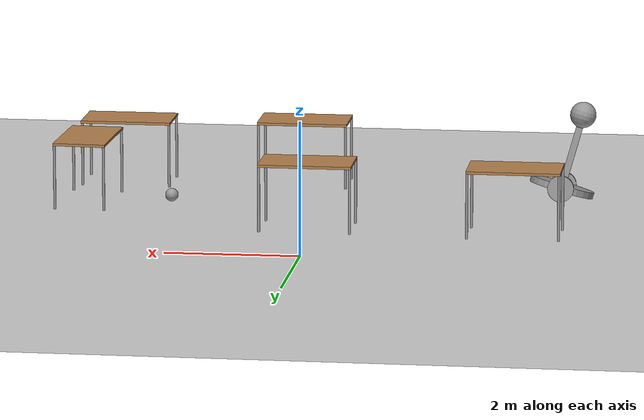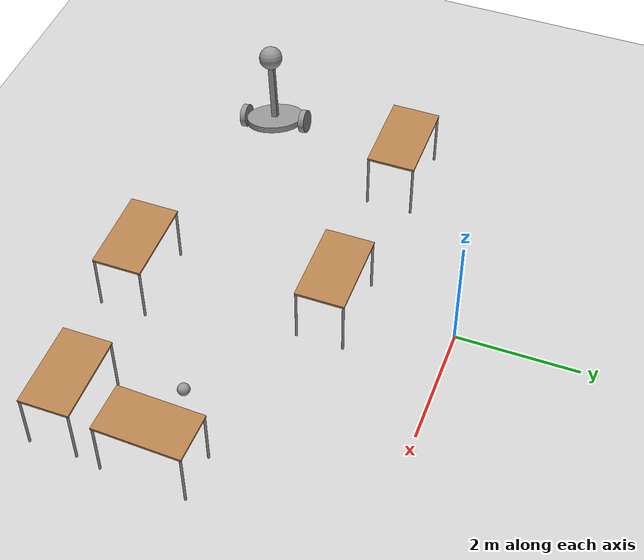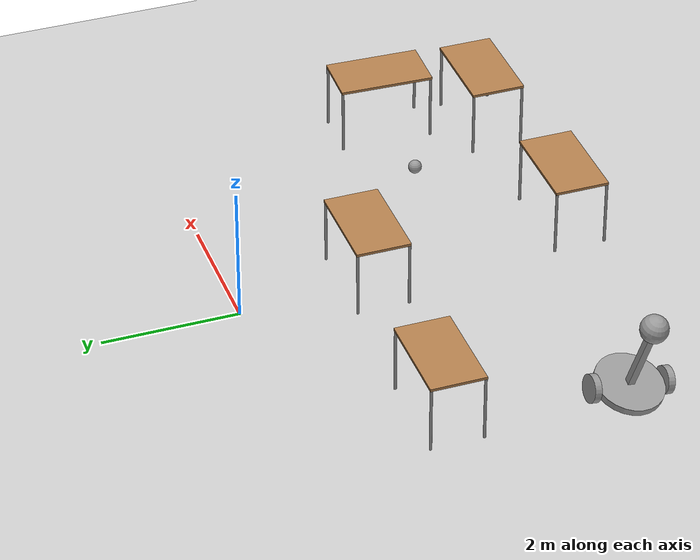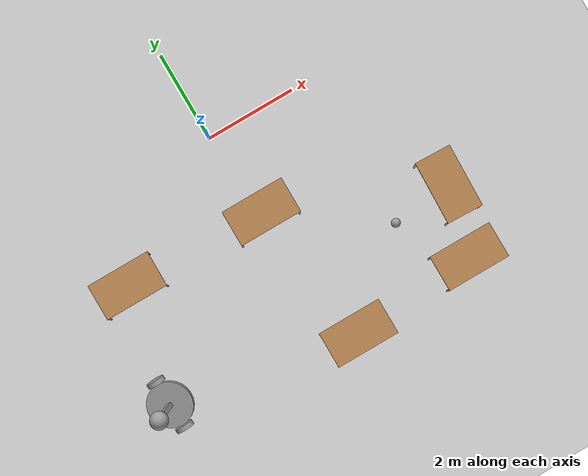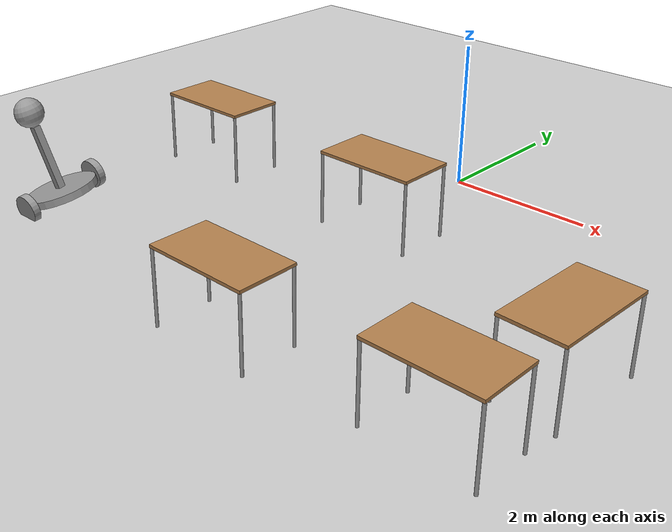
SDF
<sdf version="1.6">
 <world name="default">
  <model name="ground_plane">
   <static>1</static>
   <link name="link">
    <collision name="collision">
     <geometry><plane><normal>0 0 1</normal><size>100 100</size></plane></geometry>
     <surface><friction><ode><mu>100</mu><mu2>50</mu2></ode></friction></surface>
    </collision>
    <visual name="visual">
     <cast_shadows>0</cast_shadows>
     <geometry><plane><normal>0 0 1</normal><size>100 100</size></plane></geometry>
     <material>
      <script><uri>file://media/materials/scripts/gazebo.material</uri><name>Gazebo/Grey</name></script>
     </material>
    </visual>
   </link>
  </model>
  <model name="robot_1">
   <link name="link_10">
    <pose>0 0 0.83 0 -0 0</pose>
    <inertial>
     <mass>1</mass>
     <inertia><ixx>0.1</ixx><ixy>0</ixy><ixz>0</ixz><iyy>0.1</iyy><iyz>0</iyz><izz>0.1</izz></inertia>
    </inertial>
    <visual name="visual">
     <geometry><sphere><radius>0.2</radius></sphere></geometry>
     <material>
      <lighting>1</lighting>
      <script><uri>file://media/materials/scripts/gazebo.material</uri><name>Gazebo/Grey</name></script>
      <ambient>0.3 0.3 0.3 1</ambient>
      <diffuse>0.7 0.7 0.7 1</diffuse>
      <specular>0.01 0.01 0.01 1</specular>
      <emissive>0 0 0 1</emissive>
      <shader type="vertex"><normal_map>__default__</normal_map></shader>
     </material>
    </visual>
    <collision name="collision">
     <geometry><sphere><radius>0.2</radius></sphere></geometry>
     <surface>
      <friction>
       <ode><mu>1</mu><mu2>1</mu2><fdir1>0 0 0</fdir1><slip1>0</slip1><slip2>0</slip2></ode>
       <torsional>
        <coefficient>1</coefficient>
        <patch_radius>0</patch_radius>
        <surface_radius>0</surface_radius>
        <use_patch_radius>1</use_patch_radius>
        <ode><slip>0</slip></ode>
       </torsional>
      </friction>
      <bounce><restitution_coefficient>0</restitution_coefficient><threshold>1e+06</threshold></bounce>
      <contact>
       <collide_without_contact>0</collide_without_contact>
       <collide_without_contact_bitmask>1</collide_without_contact_bitmask>
       <collide_bitmask>1</collide_bitmask>
       <ode>
        <soft_cfm>0</soft_cfm>
        <soft_erp>0.2</soft_erp>
        <kp>1e+13</kp>
        <kd>1</kd>
        <max_vel>0.01</max_vel>
        <min_depth>0</min_depth>
       </ode>
       <bullet>
        <split_impulse>1</split_impulse>
        <split_impulse_penetration_threshold>-0.01</split_impulse_penetration_threshold>
        <soft_cfm>0</soft_cfm>
        <soft_erp>0.2</soft_erp>
        <kp>1e+13</kp>
        <kd>1</kd>
       </bullet>
      </contact>
     </surface>
    </collision>
   </link>
   <link name="link_6">
    <pose>0 0 -0.32 0 -0 0</pose>
    <inertial>
     <mass>1</mass>
     <inertia><ixx>0.145833</ixx><ixy>0</ixy><ixz>0</ixz><iyy>0.145833</iyy><iyz>0</iyz><izz>0.125</izz></inertia>
    </inertial>
    <visual name="visual">
     <geometry><cylinder><radius>0.5</radius><length>0.1</length></cylinder></geometry>
     <material>
      <lighting>1</lighting>
      <script><uri>file://media/materials/scripts/gazebo.material</uri><name>Gazebo/Grey</name></script>
      <ambient>0.3 0.3 0.3 1</ambient>
      <diffuse>0.7 0.7 0.7 1</diffuse>
      <specular>0.01 0.01 0.01 1</specular>
      <emissive>0 0 0 1</emissive>
      <shader type="vertex"><normal_map>__default__</normal_map></shader>
     </material>
    </visual>
    <collision name="collision">
     <geometry><cylinder><radius>0.5</radius><length>0.1</length></cylinder></geometry>
     <surface>
      <friction>
       <ode><mu>1</mu><mu2>1</mu2><fdir1>0 0 0</fdir1><slip1>0</slip1><slip2>0</slip2></ode>
       <torsional>
        <coefficient>1</coefficient>
        <patch_radius>0</patch_radius>
        <surface_radius>0</surface_radius>
        <use_patch_radius>1</use_patch_radius>
        <ode><slip>0</slip></ode>
       </torsional>
      </friction>
      <bounce><restitution_coefficient>0</restitution_coefficient><threshold>1e+06</threshold></bounce>
      <contact>
       <collide_without_contact>0</collide_without_contact>
       <collide_without_contact_bitmask>1</collide_without_contact_bitmask>
       <collide_bitmask>1</collide_bitmask>
       <ode>
        <soft_cfm>0</soft_cfm>
        <soft_erp>0.2</soft_erp>
        <kp>1e+13</kp>
        <kd>1</kd>
        <max_vel>0.01</max_vel>
        <min_depth>0</min_depth>
       </ode>
       <bullet>
        <split_impulse>1</split_impulse>
        <split_impulse_penetration_threshold>-0.01</split_impulse_penetration_threshold>
        <soft_cfm>0</soft_cfm>
        <soft_erp>0.2</soft_erp>
        <kp>1e+13</kp>
        <kd>1</kd>
       </bullet>
      </contact>
     </surface>
    </collision>
   </link>
   <link name="link_7">
    <pose>0 0 0.13 0 -0 0</pose>
    <inertial>
     <mass>1</mass>
     <inertia>
      <ixx>0.166667</ixx>
      <ixy>0</ixy>
      <ixz>0</ixz>
      <iyy>0.166667</iyy>
      <iyz>0</iyz>
      <izz>0.166667</izz>
     </inertia>
    </inertial>
    <visual name="visual">
     <geometry><box><size>0.1 0.1 1</size></box></geometry>
     <material>
      <lighting>1</lighting>
      <script><uri>file://media/materials/scripts/gazebo.material</uri><name>Gazebo/Grey</name></script>
      <ambient>0.3 0.3 0.3 1</ambient>
      <diffuse>0.7 0.7 0.7 1</diffuse>
      <specular>0.01 0.01 0.01 1</specular>
      <emissive>0 0 0 1</emissive>
      <shader type="vertex"><normal_map>__default__</normal_map></shader>
     </material>
    </visual>
    <collision name="collision">
     <geometry><box><size>0.1 0.1 1</size></box></geometry>
     <surface>
      <friction>
       <ode><mu>1</mu><mu2>1</mu2><fdir1>0 0 0</fdir1><slip1>0</slip1><slip2>0</slip2></ode>
       <torsional>
        <coefficient>1</coefficient>
        <patch_radius>0</patch_radius>
        <surface_radius>0</surface_radius>
        <use_patch_radius>1</use_patch_radius>
        <ode><slip>0</slip></ode>
       </torsional>
      </friction>
      <bounce><restitution_coefficient>0</restitution_coefficient><threshold>1e+06</threshold></bounce>
      <contact>
       <collide_without_contact>0</collide_without_contact>
       <collide_without_contact_bitmask>1</collide_without_contact_bitmask>
       <collide_bitmask>1</collide_bitmask>
       <ode>
        <soft_cfm>0</soft_cfm>
        <soft_erp>0.2</soft_erp>
        <kp>1e+13</kp>
        <kd>1</kd>
        <max_vel>0.01</max_vel>
        <min_depth>0</min_depth>
       </ode>
       <bullet>
        <split_impulse>1</split_impulse>
        <split_impulse_penetration_threshold>-0.01</split_impulse_penetration_threshold>
        <soft_cfm>0</soft_cfm>
        <soft_erp>0.2</soft_erp>
        <kp>1e+13</kp>
        <kd>1</kd>
       </bullet>
      </contact>
     </surface>
    </collision>
   </link>
   <link name="link_8">
    <pose>0 -0.550241 -0.32 1.572 -0 0</pose>
    <inertial>
     <mass>1</mass>
     <inertia><ixx>0.145833</ixx><ixy>0</ixy><ixz>0</ixz><iyy>0.145833</iyy><iyz>0</iyz><izz>0.125</izz></inertia>
    </inertial>
    <visual name="visual">
     <geometry><cylinder><radius>0.2</radius><length>0.1</length></cylinder></geometry>
     <material>
      <lighting>1</lighting>
      <script><uri>file://media/materials/scripts/gazebo.material</uri><name>Gazebo/Grey</name></script>
      <ambient>0.3 0.3 0.3 1</ambient>
      <diffuse>0.7 0.7 0.7 1</diffuse>
      <specular>0.01 0.01 0.01 1</specular>
      <emissive>0 0 0 1</emissive>
      <shader type="vertex"><normal_map>__default__</normal_map></shader>
     </material>
    </visual>
    <collision name="collision">
     <geometry><cylinder><radius>0.2</radius><length>0.1</length></cylinder></geometry>
     <surface>
      <friction>
       <ode><mu>1</mu><mu2>1</mu2><fdir1>0 0 0</fdir1><slip1>0</slip1><slip2>0</slip2></ode>
       <torsional>
        <coefficient>1</coefficient>
        <patch_radius>0</patch_radius>
        <surface_radius>0</surface_radius>
        <use_patch_radius>1</use_patch_radius>
        <ode><slip>0</slip></ode>
       </torsional>
      </friction>
      <bounce><restitution_coefficient>0</restitution_coefficient><threshold>1e+06</threshold></bounce>
      <contact>
       <collide_without_contact>0</collide_without_contact>
       <collide_without_contact_bitmask>1</collide_without_contact_bitmask>
       <collide_bitmask>1</collide_bitmask>
       <ode>
        <soft_cfm>0</soft_cfm>
        <soft_erp>0.2</soft_erp>
        <kp>1e+13</kp>
        <kd>1</kd>
        <max_vel>0.01</max_vel>
        <min_depth>0</min_depth>
       </ode>
       <bullet>
        <split_impulse>1</split_impulse>
        <split_impulse_penetration_threshold>-0.01</split_impulse_penetration_threshold>
        <soft_cfm>0</soft_cfm>
        <soft_erp>0.2</soft_erp>
        <kp>1e+13</kp>
        <kd>1</kd>
       </bullet>
      </contact>
     </surface>
    </collision>
   </link>
   <link name="link_8_clone">
    <pose>0 0.550241 -0.32 1.572 -0 0</pose>
    <inertial>
     <mass>1</mass>
     <inertia><ixx>0.145833</ixx><ixy>0</ixy><ixz>0</ixz><iyy>0.145833</iyy><iyz>0</iyz><izz>0.125</izz></inertia>
    </inertial>
    <visual name="visual">
     <geometry><cylinder><radius>0.2</radius><length>0.1</length></cylinder></geometry>
     <material>
      <lighting>1</lighting>
      <script><uri>file://media/materials/scripts/gazebo.material</uri><name>Gazebo/Grey</name></script>
      <ambient>0.3 0.3 0.3 1</ambient>
      <diffuse>0.7 0.7 0.7 1</diffuse>
      <specular>0.01 0.01 0.01 1</specular>
      <emissive>0 0 0 1</emissive>
      <shader type="vertex"><normal_map>__default__</normal_map></shader>
     </material>
    </visual>
    <collision name="collision">
     <geometry><cylinder><radius>0.2</radius><length>0.1</length></cylinder></geometry>
     <surface>
      <friction>
       <ode><mu>1</mu><mu2>1</mu2><fdir1>0 0 0</fdir1><slip1>0</slip1><slip2>0</slip2></ode>
       <torsional>
        <coefficient>1</coefficient>
        <patch_radius>0</patch_radius>
        <surface_radius>0</surface_radius>
        <use_patch_radius>1</use_patch_radius>
        <ode><slip>0</slip></ode>
       </torsional>
      </friction>
      <bounce><restitution_coefficient>0</restitution_coefficient><threshold>1e+06</threshold></bounce>
      <contact>
       <collide_without_contact>0</collide_without_contact>
       <collide_without_contact_bitmask>1</collide_without_contact_bitmask>
       <collide_bitmask>1</collide_bitmask>
       <ode>
        <soft_cfm>0</soft_cfm>
        <soft_erp>0.2</soft_erp>
        <kp>1e+13</kp>
        <kd>1</kd>
        <max_vel>0.01</max_vel>
        <min_depth>0</min_depth>
       </ode>
       <bullet>
        <split_impulse>1</split_impulse>
        <split_impulse_penetration_threshold>-0.01</split_impulse_penetration_threshold>
        <soft_cfm>0</soft_cfm>
        <soft_erp>0.2</soft_erp>
        <kp>1e+13</kp>
        <kd>1</kd>
       </bullet>
      </contact>
     </surface>
    </collision>
   </link>
   <joint name="link_6_JOINT_10" type="revolute">
    <parent>link_6</parent>
    <child>link_7</child>
    <axis>
     <xyz>1 0 0</xyz>
     <use_parent_model_frame>0</use_parent_model_frame>
     <limit>
      <lower>-1.79769e+308</lower>
      <upper>1.79769e+308</upper>
      <effort>-1</effort>
      <velocity>-1</velocity>
     </limit>
     <dynamics>
      <spring_reference>0</spring_reference>
      <spring_stiffness>0</spring_stiffness>
      <damping>0</damping>
     </dynamics>
    </axis>
    <physics>
     <ode><limit><cfm>0</cfm><erp>0.2</erp></limit><suspension><cfm>0</cfm><erp>0.2</erp></suspension></ode>
    </physics>
   </joint>
   <joint name="link_6_JOINT_6" type="fixed">
    <parent>link_6</parent>
    <child>link_7</child>
    <physics>
     <ode><limit><cfm>0</cfm><erp>0.2</erp></limit><suspension><cfm>0</cfm><erp>0.2</erp></suspension></ode>
    </physics>
   </joint>
   <joint name="link_6_JOINT_7" type="revolute">
    <parent>link_6</parent>
    <child>link_8</child>
    <axis>
     <xyz>0 0 1</xyz>
     <use_parent_model_frame>0</use_parent_model_frame>
     <limit>
      <lower>-1.79769e+308</lower>
      <upper>1.79769e+308</upper>
      <effort>-1</effort>
      <velocity>-1</velocity>
     </limit>
     <dynamics>
      <spring_reference>0</spring_reference>
      <spring_stiffness>0</spring_stiffness>
      <damping>0</damping>
     </dynamics>
    </axis>
    <physics>
     <ode><limit><cfm>0</cfm><erp>0.2</erp></limit><suspension><cfm>0</cfm><erp>0.2</erp></suspension></ode>
    </physics>
   </joint>
   <joint name="link_6_JOINT_8" type="revolute">
    <parent>link_6</parent>
    <child>link_8_clone</child>
    <axis>
     <xyz>0 0 1</xyz>
     <use_parent_model_frame>0</use_parent_model_frame>
     <limit>
      <lower>-1.79769e+308</lower>
      <upper>1.79769e+308</upper>
      <effort>-1</effort>
      <velocity>-1</velocity>
     </limit>
     <dynamics>
      <spring_reference>0</spring_reference>
      <spring_stiffness>0</spring_stiffness>
      <damping>0</damping>
     </dynamics>
    </axis>
    <physics>
     <ode><limit><cfm>0</cfm><erp>0.2</erp></limit><suspension><cfm>0</cfm><erp>0.2</erp></suspension></ode>
    </physics>
   </joint>
   <joint name="link_7_JOINT_11" type="revolute">
    <parent>link_7</parent>
    <child>link_10</child>
    <axis>
     <xyz>0 0 1</xyz>
     <use_parent_model_frame>0</use_parent_model_frame>
     <limit>
      <lower>-1.79769e+308</lower>
      <upper>1.79769e+308</upper>
      <effort>-1</effort>
      <velocity>-1</velocity>
     </limit>
     <dynamics>
      <spring_reference>0</spring_reference>
      <spring_stiffness>0</spring_stiffness>
      <damping>0</damping>
     </dynamics>
    </axis>
    <physics>
     <ode><limit><cfm>0</cfm><erp>0.2</erp></limit><suspension><cfm>0</cfm><erp>0.2</erp></suspension></ode>
    </physics>
   </joint>
   <static>0</static>
   <pose>-3.56375 -4.40744 0.504823 0.158446 -0.267354 -0.006831</pose>
  </model>
  <model name="table_2">
   <static>0</static>
   <link name="link">
    <collision name="surface">
     <pose>0 0 1 0 -0 0</pose>
     <geometry><box><size>1.5 0.8 0.03</size></box></geometry>
     <surface><friction><ode><mu>0.6</mu><mu2>0.6</mu2></ode></friction></surface>
    </collision>
    <visual name="visual1">
     <pose>0 0 1 0 -0 0</pose>
     <geometry><box><size>1.4 0.8 0.04</size></box></geometry>
     <material>
      <script><uri>file://media/materials/scripts/gazebo.material</uri><name>Gazebo/Wood</name></script>
     </material>
    </visual>
    <collision name="front_left_leg">
     <pose>0.68 0.38 0.5 0 -0 0</pose>
     <geometry><cylinder><radius>0.02</radius><length>1</length></cylinder></geometry>
    </collision>
    <visual name="front_left_leg">
     <pose>0.68 0.38 0.5 0 -0 0</pose>
     <geometry><cylinder><radius>0.02</radius><length>1</length></cylinder></geometry>
     <material>
      <script><uri>file://media/materials/scripts/gazebo.material</uri><name>Gazebo/Grey</name></script>
     </material>
    </visual>
    <collision name="front_right_leg">
     <pose>0.68 -0.38 0.5 0 -0 0</pose>
     <geometry><cylinder><radius>0.02</radius><length>1</length></cylinder></geometry>
    </collision>
    <visual name="front_right_leg">
     <pose>0.68 -0.38 0.5 0 -0 0</pose>
     <geometry><cylinder><radius>0.02</radius><length>1</length></cylinder></geometry>
     <material>
      <script><uri>file://media/materials/scripts/gazebo.material</uri><name>Gazebo/Grey</name></script>
     </material>
    </visual>
    <collision name="back_right_leg">
     <pose>-0.68 -0.38 0.5 0 -0 0</pose>
     <geometry><cylinder><radius>0.02</radius><length>1</length></cylinder></geometry>
    </collision>
    <visual name="back_right_leg">
     <pose>-0.68 -0.38 0.5 0 -0 0</pose>
     <geometry><cylinder><radius>0.02</radius><length>1</length></cylinder></geometry>
     <material>
      <script><uri>file://media/materials/scripts/gazebo.material</uri><name>Gazebo/Grey</name></script>
     </material>
    </visual>
    <collision name="back_left_leg">
     <pose>-0.68 0.38 0.5 0 -0 0</pose>
     <geometry><cylinder><radius>0.02</radius><length>1</length></cylinder></geometry>
    </collision>
    <visual name="back_left_leg">
     <pose>-0.68 0.38 0.5 0 -0 0</pose>
     <geometry><cylinder><radius>0.02</radius><length>1</length></cylinder></geometry>
     <material>
      <script><uri>file://media/materials/scripts/gazebo.material</uri><name>Gazebo/Grey</name></script>
     </material>
    </visual>
    <inertial>
     <inertia><ixx>1</ixx><ixy>0</ixy><ixz>0</ixz><iyy>1</iyy><iyz>0</iyz><izz>1</izz></inertia>
     <mass>1</mass>
    </inertial>
   </link>
   <pose>3.71972 -3.38292 -2e-06 0 0 -1.6051</pose>
  </model>
  <model name="table_3">
   <static>0</static>
   <link name="link">
    <collision name="surface">
     <pose>0 0 1 0 -0 0</pose>
     <geometry><box><size>1.5 0.8 0.03</size></box></geometry>
     <surface><friction><ode><mu>0.6</mu><mu2>0.6</mu2></ode></friction></surface>
    </collision>
    <visual name="visual1">
     <pose>0 0 1 0 -0 0</pose>
     <geometry><box><size>1.4 0.8 0.04</size></box></geometry>
     <material>
      <script><uri>file://media/materials/scripts/gazebo.material</uri><name>Gazebo/Wood</name></script>
     </material>
    </visual>
    <collision name="front_left_leg">
     <pose>0.68 0.38 0.5 0 -0 0</pose>
     <geometry><cylinder><radius>0.02</radius><length>1</length></cylinder></geometry>
    </collision>
    <visual name="front_left_leg">
     <pose>0.68 0.38 0.5 0 -0 0</pose>
     <geometry><cylinder><radius>0.02</radius><length>1</length></cylinder></geometry>
     <material>
      <script><uri>file://media/materials/scripts/gazebo.material</uri><name>Gazebo/Grey</name></script>
     </material>
    </visual>
    <collision name="front_right_leg">
     <pose>0.68 -0.38 0.5 0 -0 0</pose>
     <geometry><cylinder><radius>0.02</radius><length>1</length></cylinder></geometry>
    </collision>
    <visual name="front_right_leg">
     <pose>0.68 -0.38 0.5 0 -0 0</pose>
     <geometry><cylinder><radius>0.02</radius><length>1</length></cylinder></geometry>
     <material>
      <script><uri>file://media/materials/scripts/gazebo.material</uri><name>Gazebo/Grey</name></script>
     </material>
    </visual>
    <collision name="back_right_leg">
     <pose>-0.68 -0.38 0.5 0 -0 0</pose>
     <geometry><cylinder><radius>0.02</radius><length>1</length></cylinder></geometry>
    </collision>
    <visual name="back_right_leg">
     <pose>-0.68 -0.38 0.5 0 -0 0</pose>
     <geometry><cylinder><radius>0.02</radius><length>1</length></cylinder></geometry>
     <material>
      <script><uri>file://media/materials/scripts/gazebo.material</uri><name>Gazebo/Grey</name></script>
     </material>
    </visual>
    <collision name="back_left_leg">
     <pose>-0.68 0.38 0.5 0 -0 0</pose>
     <geometry><cylinder><radius>0.02</radius><length>1</length></cylinder></geometry>
    </collision>
    <visual name="back_left_leg">
     <pose>-0.68 0.38 0.5 0 -0 0</pose>
     <geometry><cylinder><radius>0.02</radius><length>1</length></cylinder></geometry>
     <material>
      <script><uri>file://media/materials/scripts/gazebo.material</uri><name>Gazebo/Grey</name></script>
     </material>
    </visual>
    <inertial>
     <inertia><ixx>1</ixx><ixy>0</ixy><ixz>0</ixz><iyy>1</iyy><iyz>0</iyz><izz>1</izz></inertia>
     <mass>1</mass>
    </inertial>
   </link>
   <pose>-2.97146 -1.84136 -9e-06 0 -1e-06 -0.00014</pose>
  </model>
  <model name="table_4">
   <static>0</static>
   <link name="link">
    <collision name="surface">
     <pose>0 0 1 0 -0 0</pose>
     <geometry><box><size>1.5 0.8 0.03</size></box></geometry>
     <surface><friction><ode><mu>0.6</mu><mu2>0.6</mu2></ode></friction></surface>
    </collision>
    <visual name="visual1">
     <pose>0 0 1 0 -0 0</pose>
     <geometry><box><size>1.4 0.8 0.04</size></box></geometry>
     <material>
      <script><uri>file://media/materials/scripts/gazebo.material</uri><name>Gazebo/Wood</name></script>
     </material>
    </visual>
    <collision name="front_left_leg">
     <pose>0.68 0.38 0.5 0 -0 0</pose>
     <geometry><cylinder><radius>0.02</radius><length>1</length></cylinder></geometry>
    </collision>
    <visual name="front_left_leg">
     <pose>0.68 0.38 0.5 0 -0 0</pose>
     <geometry><cylinder><radius>0.02</radius><length>1</length></cylinder></geometry>
     <material>
      <script><uri>file://media/materials/scripts/gazebo.material</uri><name>Gazebo/Grey</name></script>
     </material>
    </visual>
    <collision name="front_right_leg">
     <pose>0.68 -0.38 0.5 0 -0 0</pose>
     <geometry><cylinder><radius>0.02</radius><length>1</length></cylinder></geometry>
    </collision>
    <visual name="front_right_leg">
     <pose>0.68 -0.38 0.5 0 -0 0</pose>
     <geometry><cylinder><radius>0.02</radius><length>1</length></cylinder></geometry>
     <material>
      <script><uri>file://media/materials/scripts/gazebo.material</uri><name>Gazebo/Grey</name></script>
     </material>
    </visual>
    <collision name="back_right_leg">
     <pose>-0.68 -0.38 0.5 0 -0 0</pose>
     <geometry><cylinder><radius>0.02</radius><length>1</length></cylinder></geometry>
    </collision>
    <visual name="back_right_leg">
     <pose>-0.68 -0.38 0.5 0 -0 0</pose>
     <geometry><cylinder><radius>0.02</radius><length>1</length></cylinder></geometry>
     <material>
      <script><uri>file://media/materials/scripts/gazebo.material</uri><name>Gazebo/Grey</name></script>
     </material>
    </visual>
    <collision name="back_left_leg">
     <pose>-0.68 0.38 0.5 0 -0 0</pose>
     <geometry><cylinder><radius>0.02</radius><length>1</length></cylinder></geometry>
    </collision>
    <visual name="back_left_leg">
     <pose>-0.68 0.38 0.5 0 -0 0</pose>
     <geometry><cylinder><radius>0.02</radius><length>1</length></cylinder></geometry>
     <material>
      <script><uri>file://media/materials/scripts/gazebo.material</uri><name>Gazebo/Grey</name></script>
     </material>
    </visual>
    <inertial>
     <inertia><ixx>1</ixx><ixy>0</ixy><ixz>0</ixz><iyy>1</iyy><iyz>0</iyz><izz>1</izz></inertia>
     <mass>1</mass>
    </inertial>
   </link>
   <pose>3.32811 -4.86435 -1e-06 -2e-06 0 0</pose>
  </model>
  <model name="table_5">
   <static>0</static>
   <link name="link">
    <collision name="surface">
     <pose>0 0 1 0 -0 0</pose>
     <geometry><box><size>1.5 0.8 0.03</size></box></geometry>
     <surface><friction><ode><mu>0.6</mu><mu2>0.6</mu2></ode></friction></surface>
    </collision>
    <visual name="visual1">
     <pose>0 0 1 0 -0 0</pose>
     <geometry><box><size>1.4 0.8 0.04</size></box></geometry>
     <material>
      <script><uri>file://media/materials/scripts/gazebo.material</uri><name>Gazebo/Wood</name></script>
     </material>
    </visual>
    <collision name="front_left_leg">
     <pose>0.68 0.38 0.5 0 -0 0</pose>
     <geometry><cylinder><radius>0.02</radius><length>1</length></cylinder></geometry>
    </collision>
    <visual name="front_left_leg">
     <pose>0.68 0.38 0.5 0 -0 0</pose>
     <geometry><cylinder><radius>0.02</radius><length>1</length></cylinder></geometry>
     <material>
      <script><uri>file://media/materials/scripts/gazebo.material</uri><name>Gazebo/Grey</name></script>
     </material>
    </visual>
    <collision name="front_right_leg">
     <pose>0.68 -0.38 0.5 0 -0 0</pose>
     <geometry><cylinder><radius>0.02</radius><length>1</length></cylinder></geometry>
    </collision>
    <visual name="front_right_leg">
     <pose>0.68 -0.38 0.5 0 -0 0</pose>
     <geometry><cylinder><radius>0.02</radius><length>1</length></cylinder></geometry>
     <material>
      <script><uri>file://media/materials/scripts/gazebo.material</uri><name>Gazebo/Grey</name></script>
     </material>
    </visual>
    <collision name="back_right_leg">
     <pose>-0.68 -0.38 0.5 0 -0 0</pose>
     <geometry><cylinder><radius>0.02</radius><length>1</length></cylinder></geometry>
    </collision>
    <visual name="back_right_leg">
     <pose>-0.68 -0.38 0.5 0 -0 0</pose>
     <geometry><cylinder><radius>0.02</radius><length>1</length></cylinder></geometry>
     <material>
      <script><uri>file://media/materials/scripts/gazebo.material</uri><name>Gazebo/Grey</name></script>
     </material>
    </visual>
    <collision name="back_left_leg">
     <pose>-0.68 0.38 0.5 0 -0 0</pose>
     <geometry><cylinder><radius>0.02</radius><length>1</length></cylinder></geometry>
    </collision>
    <visual name="back_left_leg">
     <pose>-0.68 0.38 0.5 0 -0 0</pose>
     <geometry><cylinder><radius>0.02</radius><length>1</length></cylinder></geometry>
     <material>
      <script><uri>file://media/materials/scripts/gazebo.material</uri><name>Gazebo/Grey</name></script>
     </material>
    </visual>
    <inertial>
     <inertia><ixx>1</ixx><ixy>0</ixy><ixz>0</ixz><iyy>1</iyy><iyz>0</iyz><izz>1</izz></inertia>
     <mass>1</mass>
    </inertial>
   </link>
   <pose>0.592346 -5.06305 -1e-06 -2e-06 0 0</pose>
  </model>
  <model name="my_ball">
   <link name="link_0">
    <inertial>
     <mass>1</mass>
     <inertia><ixx>0.1</ixx><ixy>0</ixy><ixz>0</ixz><iyy>0.1</iyy><iyz>0</iyz><izz>0.1</izz></inertia>
    </inertial>
    <visual name="visual">
     <geometry><sphere><radius>0.1</radius></sphere></geometry>
     <material>
      <lighting>1</lighting>
      <script><uri>file://media/materials/scripts/gazebo.material</uri><name>Gazebo/Grey</name></script>
      <ambient>1 1 1 1</ambient>
      <diffuse>1 1 1 1</diffuse>
      <specular>1 1 1 1</specular>
      <emissive>1 1 1 1</emissive>
      <shader type="vertex"><normal_map>__default__</normal_map></shader>
     </material>
    </visual>
    <collision name="collision">
     <geometry><sphere><radius>0.1</radius></sphere></geometry>
     <surface>
      <friction>
       <ode><mu>1</mu><mu2>1</mu2><fdir1>0 0 0</fdir1><slip1>0</slip1><slip2>0</slip2></ode>
       <torsional>
        <coefficient>1</coefficient>
        <patch_radius>0</patch_radius>
        <surface_radius>0</surface_radius>
        <use_patch_radius>1</use_patch_radius>
        <ode><slip>0</slip></ode>
       </torsional>
      </friction>
      <bounce><restitution_coefficient>0</restitution_coefficient><threshold>1e+06</threshold></bounce>
      <contact>
       <collide_without_contact>0</collide_without_contact>
       <collide_without_contact_bitmask>1</collide_without_contact_bitmask>
       <collide_bitmask>1</collide_bitmask>
       <ode>
        <soft_cfm>0</soft_cfm>
        <soft_erp>0.2</soft_erp>
        <kp>1e+13</kp>
        <kd>1</kd>
        <max_vel>0.01</max_vel>
        <min_depth>0</min_depth>
       </ode>
       <bullet>
        <split_impulse>1</split_impulse>
        <split_impulse_penetration_threshold>-0.01</split_impulse_penetration_threshold>
        <soft_cfm>0</soft_cfm>
        <soft_erp>0.2</soft_erp>
        <kp>1e+13</kp>
        <kd>1</kd>
       </bullet>
      </contact>
     </surface>
    </collision>
   </link>
   <static>0</static>
   <pose>2.44463 -3.48919 0.1 0 -0 0</pose>
  </model>
  <model name="table_0">
   <static>0</static>
   <link name="link">
    <collision name="surface">
     <pose>0 0 1 0 -0 0</pose>
     <geometry><box><size>1.5 0.8 0.03</size></box></geometry>
     <surface><friction><ode><mu>0.6</mu><mu2>0.6</mu2></ode></friction></surface>
    </collision>
    <visual name="visual1">
     <pose>0 0 1 0 -0 0</pose>
     <geometry><box><size>1.4 0.8 0.04</size></box></geometry>
     <material>
      <script><uri>file://media/materials/scripts/gazebo.material</uri><name>Gazebo/Wood</name></script>
     </material>
    </visual>
    <collision name="front_left_leg">
     <pose>0.68 0.38 0.5 0 -0 0</pose>
     <geometry><cylinder><radius>0.02</radius><length>1</length></cylinder></geometry>
    </collision>
    <visual name="front_left_leg">
     <pose>0.68 0.38 0.5 0 -0 0</pose>
     <geometry><cylinder><radius>0.02</radius><length>1</length></cylinder></geometry>
     <material>
      <script><uri>file://media/materials/scripts/gazebo.material</uri><name>Gazebo/Grey</name></script>
     </material>
    </visual>
    <collision name="front_right_leg">
     <pose>0.68 -0.38 0.5 0 -0 0</pose>
     <geometry><cylinder><radius>0.02</radius><length>1</length></cylinder></geometry>
    </collision>
    <visual name="front_right_leg">
     <pose>0.68 -0.38 0.5 0 -0 0</pose>
     <geometry><cylinder><radius>0.02</radius><length>1</length></cylinder></geometry>
     <material>
      <script><uri>file://media/materials/scripts/gazebo.material</uri><name>Gazebo/Grey</name></script>
     </material>
    </visual>
    <collision name="back_right_leg">
     <pose>-0.68 -0.38 0.5 0 -0 0</pose>
     <geometry><cylinder><radius>0.02</radius><length>1</length></cylinder></geometry>
    </collision>
    <visual name="back_right_leg">
     <pose>-0.68 -0.38 0.5 0 -0 0</pose>
     <geometry><cylinder><radius>0.02</radius><length>1</length></cylinder></geometry>
     <material>
      <script><uri>file://media/materials/scripts/gazebo.material</uri><name>Gazebo/Grey</name></script>
     </material>
    </visual>
    <collision name="back_left_leg">
     <pose>-0.68 0.38 0.5 0 -0 0</pose>
     <geometry><cylinder><radius>0.02</radius><length>1</length></cylinder></geometry>
    </collision>
    <visual name="back_left_leg">
     <pose>-0.68 0.38 0.5 0 -0 0</pose>
     <geometry><cylinder><radius>0.02</radius><length>1</length></cylinder></geometry>
     <material>
      <script><uri>file://media/materials/scripts/gazebo.material</uri><name>Gazebo/Grey</name></script>
     </material>
    </visual>
    <inertial>
     <inertia><ixx>1</ixx><ixy>0</ixy><ixz>0</ixz><iyy>1</iyy><iyz>0</iyz><izz>1</izz></inertia>
     <mass>1</mass>
    </inertial>
   </link>
   <pose>0.144126 -1.92798 -9e-06 0 -1e-06 0</pose>
  </model>
 </world>
</sdf>
